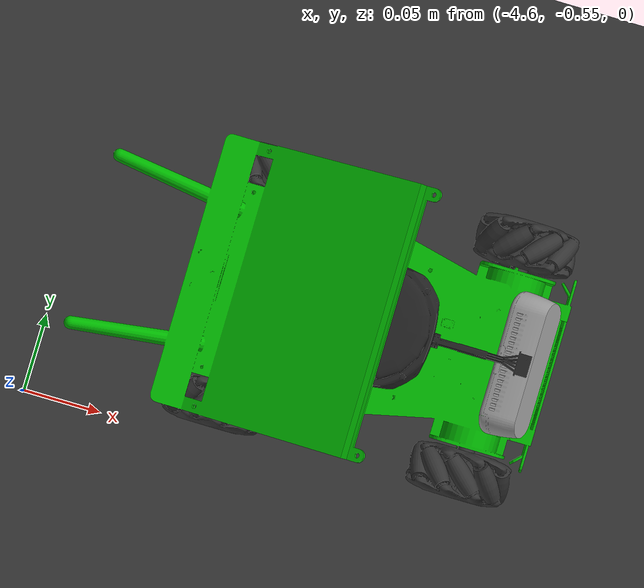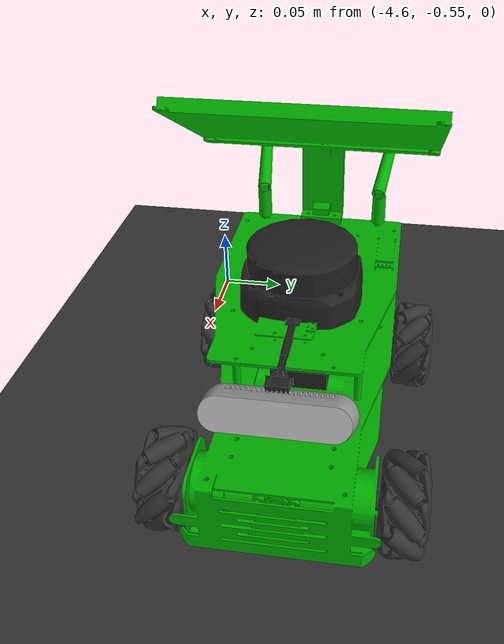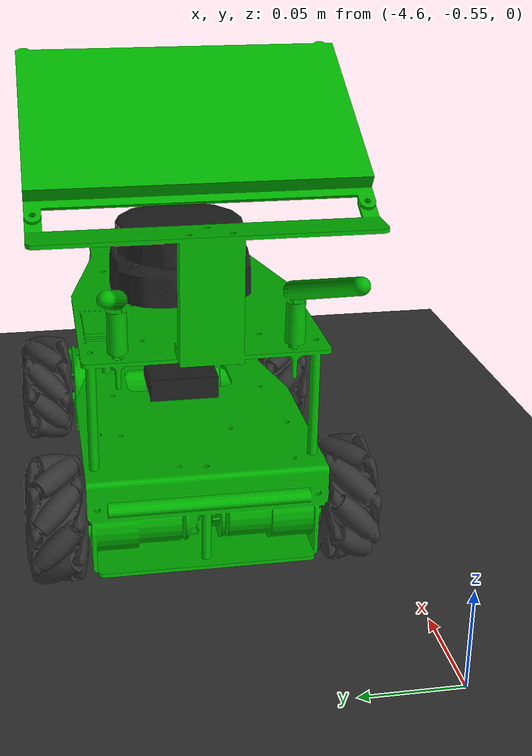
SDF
<sdf version="1.9">
 <world name="default">
  <model name="ground_plane">
   <static>true</static>
   <link name="link">
    <collision name="collision">
     <geometry><plane><normal>0 0 1</normal><size>10 10</size></plane></geometry>
    </collision>
    <visual name="visual">
     <geometry><plane><normal>0 0 1</normal><size>10 10</size></plane></geometry>
     <material>
      <ambient>0.2 0.2 0.2 1</ambient>
      <diffuse>0.2 0.2 0.2 1</diffuse>
      <specular>0.2 0.2 0.2 1</specular>
     </material>
    </visual>
    <inertial>
     <mass>1</mass>
     <inertia><ixx>1</ixx><ixy>0</ixy><ixz>0</ixz><iyy>1</iyy><iyz>0</iyz><izz>1</izz></inertia>
    </inertial>
   </link>
  </model>
  <model name="rosmaster_x3_1_1">
   <link name="base_footprint">
    <inertial>
     <pose>-0.02762684124386252 0 0.1368573036006547 0 0 0</pose>
     <mass>4.887999999999999</mass>
     <inertia>
      <ixx>0.02688366396477616</ixx>
      <ixy>0</ixy>
      <ixz>0.00075297530245550803</ixz>
      <iyy>0.052121897096815251</iyy>
      <iyz>0</iyz>
      <izz>0.047371939139955743</izz>
     </inertia>
    </inertial>
    <collision name="base_footprint_fixed_joint_lump__base_link_collision">
     <pose>-0.031 0 0.13925 0 0 0</pose>
     <geometry><box><size>0.3 0.1386 0.19725</size></box></geometry>
    </collision>
    <visual name="base_footprint_fixed_joint_lump__base_link_visual">
     <pose>0 0 0.0325 0 0 0</pose>
     <geometry>
      <mesh>
       <scale>1 1 1</scale>
       <uri>file:///home/mo/yahboom_ws/install/yahboom_rosmaster_description/share/yahboom_rosmaster_description/meshes/rosmaster_x3/visual/base_link_X3.STL</uri>
      </mesh>
     </geometry>
     <material><ambient>0 0.7 0 1</ambient><diffuse>0 0.7 0 1</diffuse><specular>0 0.7 0 1</specular></material>
    </visual>
    <visual name="base_footprint_fixed_joint_lump__cam_1_link_visual_1">
     <pose>0.105 0 0.0825 1.070796326794896 -5.551115123125783e-17 1.570796326794896</pose>
     <geometry>
      <mesh>
       <scale>1 1 1</scale>
       <uri>file:///home/mo/yahboom_ws/install/yahboom_rosmaster_description/share/yahboom_rosmaster_description/meshes/intel_realsense/visual/d435.stl</uri>
      </mesh>
     </geometry>
     <material><diffuse>0.625 0.625 0.625 1</diffuse><ambient>0.625 0.625 0.625 1</ambient></material>
    </visual>
    <visual name="base_footprint_fixed_joint_lump__imu_link_visual_2">
     <pose>0 0 0.0385 0 0 0</pose>
     <geometry><box><size>0.03899 0.03785 0.01338</size></box></geometry>
     <material><diffuse>0.125 0.125 0.125 1</diffuse><ambient>0.125 0.125 0.125 1</ambient></material>
    </visual>
    <visual name="base_footprint_fixed_joint_lump__laser_frame_visual_3">
     <pose>0 0 0.115 -1.570796326794896 0 0</pose>
     <geometry>
      <mesh>
       <scale>0.001 0.001 0.001</scale>
       <uri>file:///home/mo/yahboom_ws/install/yahboom_rosmaster_description/share/yahboom_rosmaster_description/meshes/rplidar/rplidar_s2.stl</uri>
      </mesh>
     </geometry>
     <material><diffuse>0.125 0.125 0.125 1</diffuse><ambient>0.125 0.125 0.125 1</ambient></material>
    </visual>
    <sensor name="cam_1" type="rgbd_camera">
     <camera>
      <horizontal_fov>1.5184</horizontal_fov>
      <image><width>424</width><height>240</height></image>
      <clip><near>0.050000000000000003</near><far>1.5</far></clip>
     </camera>
     <always_on>true</always_on>
     <topic>cam_1</topic>
     <update_rate>2</update_rate>
     <visualize>true</visualize>
     <pose>0.105 0 0.0825 0 -0.5 0</pose>
     <gz_frame_id>cam_1_depth_optical_frame</gz_frame_id>
    </sensor>
    <sensor name="imu_sensor" type="imu">
     <topic>imu/data</topic>
     <update_rate>15</update_rate>
     <always_on>true</always_on>
     <visualize>false</visualize>
     <pose>0 0 0.0385 0 -0 0</pose>
     <gz_frame_id>imu_link</gz_frame_id>
    </sensor>
    <sensor name="lidar_sensor" type="gpu_lidar">
     <topic>scan</topic>
     <update_rate>10</update_rate>
     <always_on>true</always_on>
     <visualize>false</visualize>
     <ray>
      <scan>
       <horizontal>
        <samples>720</samples>
        <resolution>1</resolution>
        <min_angle>-3.1415899999999999</min_angle>
        <max_angle>3.1415899999999999</max_angle>
       </horizontal>
       <vertical>
        <samples>1</samples>
        <resolution>1</resolution>
        <min_angle>0</min_angle>
        <max_angle>0</max_angle>
       </vertical>
      </scan>
      <range><min>0.20000000000000001</min><max>30</max><resolution>0.012999999999999999</resolution></range>
     </ray>
     <pose>0 0 0.115 0 -0 0</pose>
     <gz_frame_id>laser_frame</gz_frame_id>
    </sensor>
   </link>
   <joint name="back_left_wheel_joint" type="revolute">
    <pose relative_to="base_footprint">-0.08 0.07450000000000001 0 0 0 0</pose>
    <parent>base_footprint</parent>
    <child>back_left_wheel_link</child>
    <axis>
     <xyz>0 1 0</xyz>
     <limit><lower>-10000000000000000</lower><upper>10000000000000000</upper></limit>
     <dynamics><spring_reference>0</spring_reference><spring_stiffness>0</spring_stiffness></dynamics>
    </axis>
   </joint>
   <link name="back_left_wheel_link">
    <pose relative_to="back_left_wheel_joint">0 0 0 0 0 0</pose>
    <inertial>
     <mass>9.0999999999999996</mass>
     <inertia>
      <ixx>0.0031037900833333328</ixx>
      <ixy>0</ixy>
      <ixz>0</ixz>
      <iyy>0.0048059375000000003</iyy>
      <iyz>0</iyz>
      <izz>0.0031037900833333328</izz>
     </inertia>
    </inertial>
    <collision name="back_left_wheel_link_collision">
     <pose>0 0 0 1.570796326794896 0 0</pose>
     <geometry><cylinder><length>0.0304</length><radius>0.032500000000000001</radius></cylinder></geometry>
    </collision>
    <visual name="back_left_wheel_link_visual">
     <pose>0 0 0 1.570796326794896 0 0</pose>
     <geometry>
      <mesh>
       <scale>1 1 1</scale>
       <uri>file:///home/mo/yahboom_ws/install/yahboom_rosmaster_description/share/yahboom_rosmaster_description/meshes/rosmaster_x3/visual/back_left_wheel_X3.STL</uri>
      </mesh>
     </geometry>
     <material>
      <ambient>0.2 0.2 0.2 1</ambient>
      <diffuse>0.2 0.2 0.2 1</diffuse>
      <specular>0.2 0.2 0.2 1</specular>
      <emissive>0 0 0 0</emissive>
     </material>
    </visual>
    <surface><friction><ode><mu>1.0</mu><mu2>0.0</mu2></ode></friction></surface>
   </link>
   <joint name="back_right_wheel_joint" type="revolute">
    <pose relative_to="base_footprint">-0.08 -0.07450000000000001 0 0 0 0</pose>
    <parent>base_footprint</parent>
    <child>back_right_wheel_link</child>
    <axis>
     <xyz>0 1 0</xyz>
     <limit><lower>-10000000000000000</lower><upper>10000000000000000</upper></limit>
     <dynamics><spring_reference>0</spring_reference><spring_stiffness>0</spring_stiffness></dynamics>
    </axis>
   </joint>
   <link name="back_right_wheel_link">
    <pose relative_to="back_right_wheel_joint">0 0 0 0 0 0</pose>
    <inertial>
     <mass>9.0999999999999996</mass>
     <inertia>
      <ixx>0.0031037900833333328</ixx>
      <ixy>0</ixy>
      <ixz>0</ixz>
      <iyy>0.0048059375000000003</iyy>
      <iyz>0</iyz>
      <izz>0.0031037900833333328</izz>
     </inertia>
    </inertial>
    <collision name="back_right_wheel_link_collision">
     <pose>0 0 0 1.570796326794896 0 0</pose>
     <geometry><cylinder><length>0.0304</length><radius>0.032500000000000001</radius></cylinder></geometry>
    </collision>
    <visual name="back_right_wheel_link_visual">
     <pose>0 0 0 1.570796326794896 0 0</pose>
     <geometry>
      <mesh>
       <scale>1 1 1</scale>
       <uri>file:///home/mo/yahboom_ws/install/yahboom_rosmaster_description/share/yahboom_rosmaster_description/meshes/rosmaster_x3/visual/back_right_wheel_X3.STL</uri>
      </mesh>
     </geometry>
     <material>
      <ambient>0.2 0.2 0.2 1</ambient>
      <diffuse>0.2 0.2 0.2 1</diffuse>
      <specular>0.2 0.2 0.2 1</specular>
      <emissive>0 0 0 0</emissive>
     </material>
    </visual>
    <surface><friction><ode><mu>1.0</mu><mu2>0.0</mu2></ode></friction></surface>
   </link>
   <joint name="front_left_wheel_joint" type="revolute">
    <pose relative_to="base_footprint">0.08 0.07450000000000001 0 0 0 0</pose>
    <parent>base_footprint</parent>
    <child>front_left_wheel_link</child>
    <axis>
     <xyz>0 1 0</xyz>
     <limit><lower>-10000000000000000</lower><upper>10000000000000000</upper></limit>
     <dynamics><spring_reference>0</spring_reference><spring_stiffness>0</spring_stiffness></dynamics>
    </axis>
   </joint>
   <link name="front_left_wheel_link">
    <pose relative_to="front_left_wheel_joint">0 0 0 0 0 0</pose>
    <inertial>
     <mass>9.0999999999999996</mass>
     <inertia>
      <ixx>0.0031037900833333328</ixx>
      <ixy>0</ixy>
      <ixz>0</ixz>
      <iyy>0.0048059375000000003</iyy>
      <iyz>0</iyz>
      <izz>0.0031037900833333328</izz>
     </inertia>
    </inertial>
    <collision name="front_left_wheel_link_collision">
     <pose>0 0 0 1.570796326794896 0 0</pose>
     <geometry><cylinder><length>0.0304</length><radius>0.032500000000000001</radius></cylinder></geometry>
    </collision>
    <visual name="front_left_wheel_link_visual">
     <pose>0 0 0 1.570796326794896 0 0</pose>
     <geometry>
      <mesh>
       <scale>1 1 1</scale>
       <uri>file:///home/mo/yahboom_ws/install/yahboom_rosmaster_description/share/yahboom_rosmaster_description/meshes/rosmaster_x3/visual/front_left_wheel_X3.STL</uri>
      </mesh>
     </geometry>
     <material>
      <ambient>0.2 0.2 0.2 1</ambient>
      <diffuse>0.2 0.2 0.2 1</diffuse>
      <specular>0.2 0.2 0.2 1</specular>
      <emissive>0 0 0 0</emissive>
     </material>
    </visual>
    <surface><friction><ode><mu>1.0</mu><mu2>0.0</mu2></ode></friction></surface>
   </link>
   <joint name="front_right_wheel_joint" type="revolute">
    <pose relative_to="base_footprint">0.08 -0.07450000000000001 0 0 0 0</pose>
    <parent>base_footprint</parent>
    <child>front_right_wheel_link</child>
    <axis>
     <xyz>0 1 0</xyz>
     <limit><lower>-10000000000000000</lower><upper>10000000000000000</upper></limit>
     <dynamics><spring_reference>0</spring_reference><spring_stiffness>0</spring_stiffness></dynamics>
    </axis>
   </joint>
   <link name="front_right_wheel_link">
    <pose relative_to="front_right_wheel_joint">0 0 0 0 0 0</pose>
    <inertial>
     <mass>9.0999999999999996</mass>
     <inertia>
      <ixx>0.0031037900833333328</ixx>
      <ixy>0</ixy>
      <ixz>0</ixz>
      <iyy>0.0048059375000000003</iyy>
      <iyz>0</iyz>
      <izz>0.0031037900833333328</izz>
     </inertia>
    </inertial>
    <collision name="front_right_wheel_link_collision">
     <pose>0 0 0 1.570796326794896 0 0</pose>
     <geometry><cylinder><length>0.0304</length><radius>0.032500000000000001</radius></cylinder></geometry>
    </collision>
    <visual name="front_right_wheel_link_visual">
     <pose>0 0 0 1.570796326794896 0 0</pose>
     <geometry>
      <mesh>
       <scale>1 1 1</scale>
       <uri>file:///home/mo/yahboom_ws/install/yahboom_rosmaster_description/share/yahboom_rosmaster_description/meshes/rosmaster_x3/visual/front_right_wheel_X3.STL</uri>
      </mesh>
     </geometry>
     <material>
      <ambient>0.2 0.2 0.2 1</ambient>
      <diffuse>0.2 0.2 0.2 1</diffuse>
      <specular>0.2 0.2 0.2 1</specular>
      <emissive>0 0 0 0</emissive>
     </material>
    </visual>
    <surface><friction><ode><mu>1.0</mu><mu2>0.0</mu2></ode></friction></surface>
   </link>
   <plugin name="gz::sim::systems::VelocityControl" filename="gz-sim-velocity-control-system">
    <topic>mecanum_drive_controller/cmd_vel</topic>
    <initial_linear>0 0 0</initial_linear>
    <initial_angular>0 0 0</initial_angular>
   </plugin>
   <plugin name="gz_ros2_control::GazeboSimROS2ControlPlugin" filename="gz_ros2_control-system">
    <parameters>/home/mo/yahboom_ws/install/yahboom_rosmaster_description/share/yahboom_rosmaster_description/config/rosmaster_x3/ros2_controllers.yaml</parameters>
    <ros><remapping>/controller_manager/robot_description:=/robot_description</remapping></ros>
   </plugin>
   <frame name="cam_1_color_optical_joint" attached_to="cam_1_color_frame">
    <pose>0 0 0 -1.5708 -0 -1.5708</pose>
   </frame>
   <frame name="cam_1_color_optical_frame" attached_to="cam_1_color_optical_joint"/>
   <frame name="cam_1_color_joint" attached_to="cam_1_link"><pose>0 0.015 0 0 -0 0</pose></frame>
   <frame name="cam_1_color_frame" attached_to="cam_1_color_joint"/>
   <frame name="cam_1_depth_optical_joint" attached_to="cam_1_depth_frame">
    <pose>0 0 0 -1.5708 -0 -1.5708</pose>
   </frame>
   <frame name="cam_1_depth_optical_frame" attached_to="cam_1_depth_optical_joint"/>
   <frame name="cam_1_depth_joint" attached_to="cam_1_link"/>
   <frame name="cam_1_depth_frame" attached_to="cam_1_depth_joint"/>
   <frame name="cam_1_infra1_optical_joint" attached_to="cam_1_infra1_frame">
    <pose>0 0 0 -1.5708 -0 -1.5708</pose>
   </frame>
   <frame name="cam_1_infra1_optical_frame" attached_to="cam_1_infra1_optical_joint"/>
   <frame name="cam_1_infra1_joint" attached_to="cam_1_link"/>
   <frame name="cam_1_infra1_frame" attached_to="cam_1_infra1_joint"/>
   <frame name="cam_1_infra2_optical_joint" attached_to="cam_1_infra2_frame">
    <pose>0 0 0 -1.5708 -0 -1.5708</pose>
   </frame>
   <frame name="cam_1_infra2_optical_frame" attached_to="cam_1_infra2_optical_joint"/>
   <frame name="cam_1_infra2_joint" attached_to="cam_1_link"><pose>0 -0.05 0 0 -0 0</pose></frame>
   <frame name="cam_1_infra2_frame" attached_to="cam_1_infra2_joint"/>
   <frame name="cam_1_joint" attached_to="base_link"><pose>0.105 0 0.05 0 -0.5 0</pose></frame>
   <frame name="cam_1_link" attached_to="cam_1_joint"/>
   <frame name="imu_joint" attached_to="base_link"><pose>0 0 0.006 0 -0 0</pose></frame>
   <frame name="imu_link" attached_to="imu_joint"/>
   <frame name="laser_frame_joint" attached_to="base_link"><pose>0 0 0.0825 0 -0 0</pose></frame>
   <frame name="laser_frame" attached_to="laser_frame_joint"/>
   <frame name="base_joint" attached_to="base_footprint"><pose>0 0 0.0325 0 -0 0</pose></frame>
   <frame name="base_link" attached_to="base_joint"/>
   <pose>-4.40254 -0.448416 0.032499 0 -0 -0</pose>
   <static>false</static>
  </model>
 </world>
</sdf>
